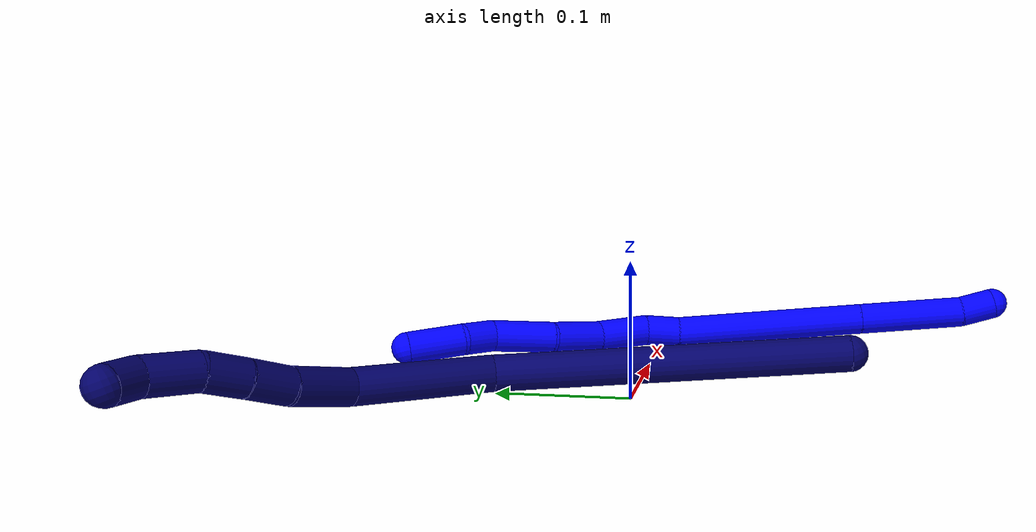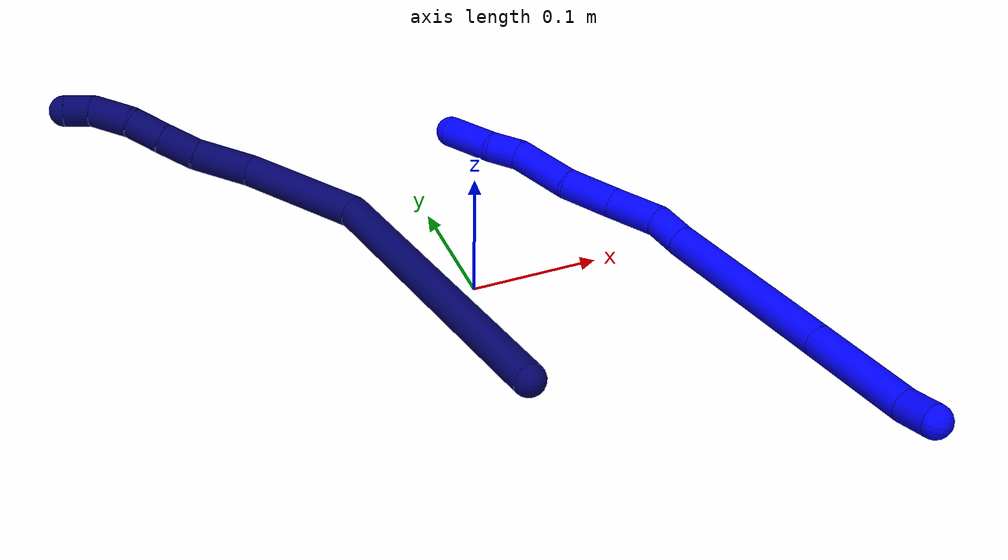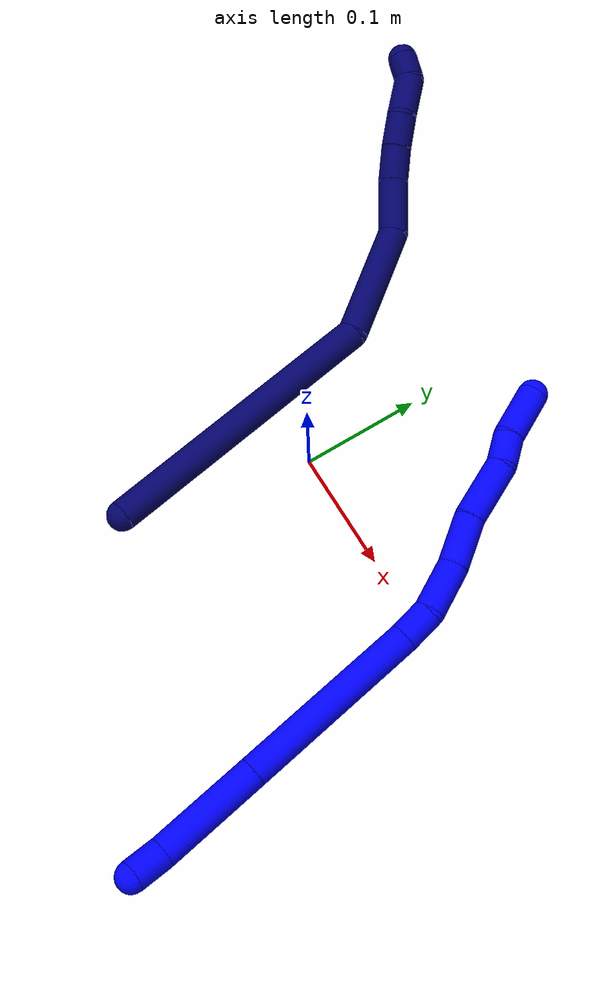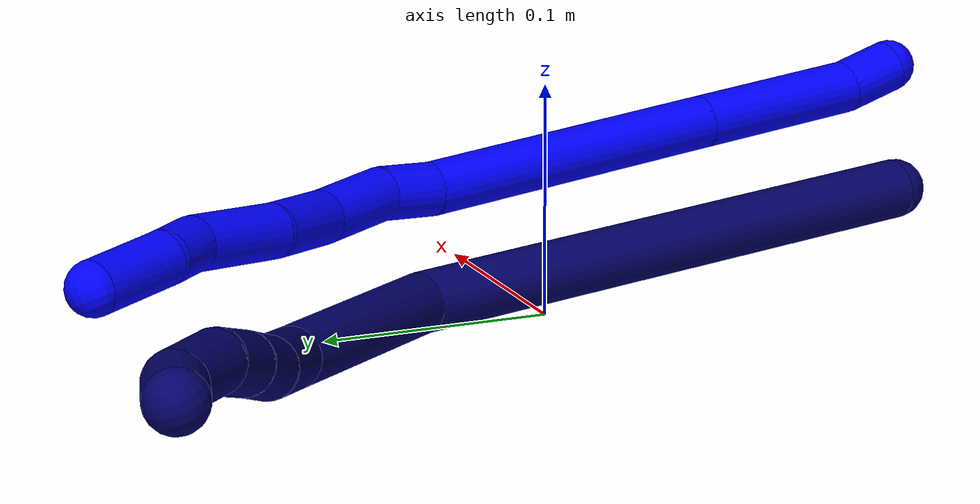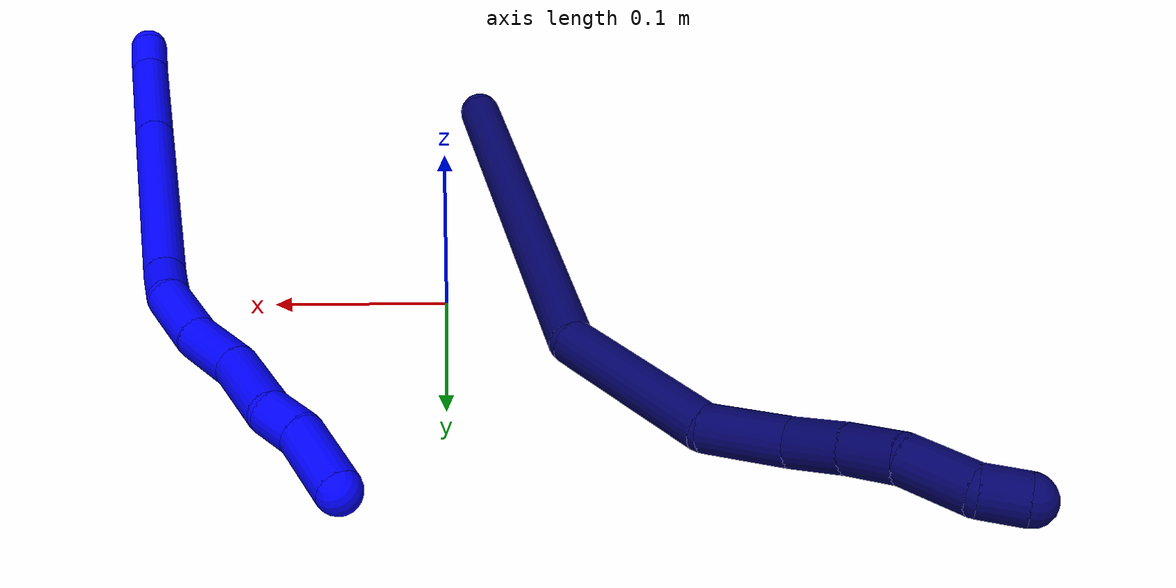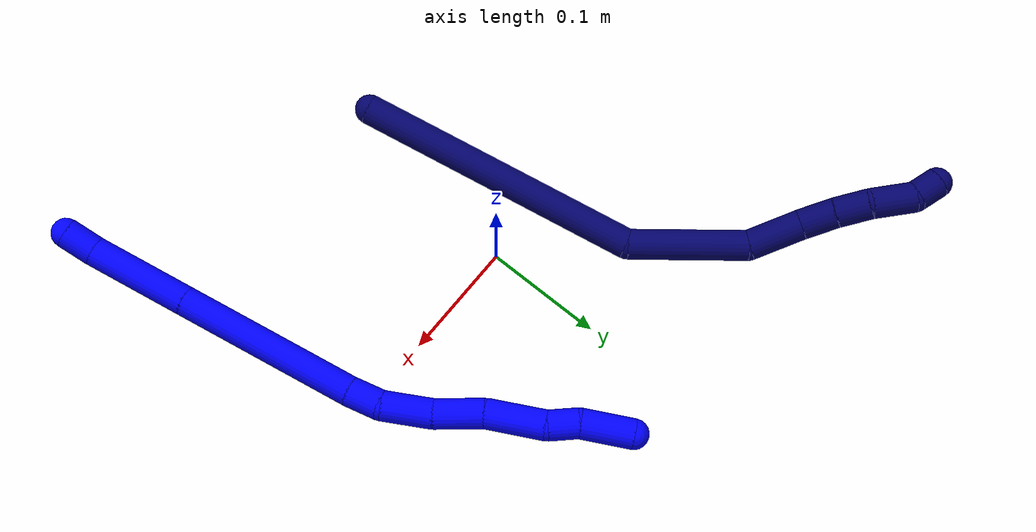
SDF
<sdf version="1.7">
 <world name="default">
  <model name="1">
   <static>0</static>
   <link name="1">
    <collision name="collision-cylinder-e_1_1_4">
     <pose>0.000587 0.013724 -0.000368 -1.59761 0.042724 -0.043885</pose>
     <geometry><cylinder><radius>0.0125</radius><length>0.027484</length></cylinder></geometry>
     <surface>
      <friction><ode><mu>1.16</mu><mu2>1.16</mu2><slip1>0</slip1><slip2>0</slip2></ode></friction>
      <contact><ode><kp>1e+06</kp><kd>1</kd><max_vel>0</max_vel><min_depth>0.001</min_depth></ode></contact>
     </surface>
    </collision>
    <visual name="visual-cylinder-e_1_1_4">
     <pose>0.000587 0.013724 -0.000368 -1.59761 0.042724 -0.043885</pose>
     <geometry><cylinder><radius>0.0125</radius><length>0.027484</length></cylinder></geometry>
     <material><ambient>0 0 1 1</ambient></material>
    </visual>
    <collision name="collision-cylinder-e_2_4_5">
     <pose>-0.00126 0.069983 0.005716 -1.42025 -0.056516 0.048593</pose>
     <geometry><cylinder><radius>0.0125</radius><length>0.086179</length></cylinder></geometry>
     <surface>
      <friction><ode><mu>1.16</mu><mu2>1.16</mu2><slip1>0</slip1><slip2>0</slip2></ode></friction>
      <contact><ode><kp>1e+06</kp><kd>1</kd><max_vel>0</max_vel><min_depth>0.001</min_depth></ode></contact>
     </surface>
    </collision>
    <visual name="visual-cylinder-e_2_4_5">
     <pose>-0.00126 0.069983 0.005716 -1.42025 -0.056516 0.048593</pose>
     <geometry><cylinder><radius>0.0125</radius><length>0.086179</length></cylinder></geometry>
     <material><ambient>0 0 1 1</ambient></material>
    </visual>
    <collision name="collision-cylinder-e_3_5_6">
     <pose>-0.008133 0.188635 0.02354 -1.4225 -0.057609 0.049645</pose>
     <geometry><cylinder><radius>0.0125</radius><length>0.154183</length></cylinder></geometry>
     <surface>
      <friction><ode><mu>1.16</mu><mu2>1.16</mu2><slip1>0</slip1><slip2>0</slip2></ode></friction>
      <contact><ode><kp>1e+06</kp><kd>1</kd><max_vel>0</max_vel><min_depth>0.001</min_depth></ode></contact>
     </surface>
    </collision>
    <visual name="visual-cylinder-e_3_5_6">
     <pose>-0.008133 0.188635 0.02354 -1.4225 -0.057609 0.049645</pose>
     <geometry><cylinder><radius>0.0125</radius><length>0.154183</length></cylinder></geometry>
     <material><ambient>0 0 1 1</ambient></material>
    </visual>
    <collision name="collision-cylinder-e_4_6_7">
     <pose>-0.014716 0.27819 0.038653 -1.2992 -0.152539 0.115959</pose>
     <geometry><cylinder><radius>0.0125</radius><length>0.028221</length></cylinder></geometry>
     <surface>
      <friction><ode><mu>1.16</mu><mu2>1.16</mu2><slip1>0</slip1><slip2>0</slip2></ode></friction>
      <contact><ode><kp>1e+06</kp><kd>1</kd><max_vel>0</max_vel><min_depth>0.001</min_depth></ode></contact>
     </surface>
    </collision>
    <visual name="visual-cylinder-e_4_6_7">
     <pose>-0.014716 0.27819 0.038653 -1.2992 -0.152539 0.115959</pose>
     <geometry><cylinder><radius>0.0125</radius><length>0.028221</length></cylinder></geometry>
     <material><ambient>0 0 1 1</ambient></material>
    </visual>
    <collision name="collision-cylinder-e_5_7_8">
     <pose>-0.024779 0.311254 0.043311 -1.52415 -0.383078 0.366011</pose>
     <geometry><cylinder><radius>0.0125</radius><length>0.042372</length></cylinder></geometry>
     <surface>
      <friction><ode><mu>1.16</mu><mu2>1.16</mu2><slip1>0</slip1><slip2>0</slip2></ode></friction>
      <contact><ode><kp>1e+06</kp><kd>1</kd><max_vel>0</max_vel><min_depth>0.001</min_depth></ode></contact>
     </surface>
    </collision>
    <visual name="visual-cylinder-e_5_7_8">
     <pose>-0.024779 0.311254 0.043311 -1.52415 -0.383078 0.366011</pose>
     <geometry><cylinder><radius>0.0125</radius><length>0.042372</length></cylinder></geometry>
     <material><ambient>0 0 1 1</ambient></material>
    </visual>
    <collision name="collision-cylinder-e_6_8_9">
     <pose>-0.043883 0.34843 0.046537 -1.4399 -0.563653 0.497319</pose>
     <geometry><cylinder><radius>0.0125</radius><length>0.041872</length></cylinder></geometry>
     <surface>
      <friction><ode><mu>1.16</mu><mu2>1.16</mu2><slip1>0</slip1><slip2>0</slip2></ode></friction>
      <contact><ode><kp>1e+06</kp><kd>1</kd><max_vel>0</max_vel><min_depth>0.001</min_depth></ode></contact>
     </surface>
    </collision>
    <visual name="visual-cylinder-e_6_8_9">
     <pose>-0.043883 0.34843 0.046537 -1.4399 -0.563653 0.497319</pose>
     <geometry><cylinder><radius>0.0125</radius><length>0.041872</length></cylinder></geometry>
     <material><ambient>0 0 1 1</ambient></material>
    </visual>
    <collision name="collision-cylinder-e_7_9_10">
     <pose>-0.064124 0.388932 0.053757 -1.3601 -0.368154 0.298905</pose>
     <geometry><cylinder><radius>0.0125</radius><length>0.050323</length></cylinder></geometry>
     <surface>
      <friction><ode><mu>1.16</mu><mu2>1.16</mu2><slip1>0</slip1><slip2>0</slip2></ode></friction>
      <contact><ode><kp>1e+06</kp><kd>1</kd><max_vel>0</max_vel><min_depth>0.001</min_depth></ode></contact>
     </surface>
    </collision>
    <visual name="visual-cylinder-e_7_9_10">
     <pose>-0.064124 0.388932 0.053757 -1.3601 -0.368154 0.298905</pose>
     <geometry><cylinder><radius>0.0125</radius><length>0.050323</length></cylinder></geometry>
     <material><ambient>0 0 1 1</ambient></material>
    </visual>
    <collision name="collision-cylinder-e_8_10_11">
     <pose>-0.080553 0.422339 0.058731 -1.56465 -0.614403 0.610865</pose>
     <geometry><cylinder><radius>0.0125</radius><length>0.02558</length></cylinder></geometry>
     <surface>
      <friction><ode><mu>1.16</mu><mu2>1.16</mu2><slip1>0</slip1><slip2>0</slip2></ode></friction>
      <contact><ode><kp>1e+06</kp><kd>1</kd><max_vel>0</max_vel><min_depth>0.001</min_depth></ode></contact>
     </surface>
    </collision>
    <visual name="visual-cylinder-e_8_10_11">
     <pose>-0.080553 0.422339 0.058731 -1.56465 -0.614403 0.610865</pose>
     <geometry><cylinder><radius>0.0125</radius><length>0.02558</length></cylinder></geometry>
     <material><ambient>0 0 1 1</ambient></material>
    </visual>
    <collision name="collision-cylinder-e_9_11_2">
     <pose>-0.095274 0.453407 0.059271 -1.54774 -0.342273 0.334618</pose>
     <geometry><cylinder><radius>0.0125</radius><length>0.043786</length></cylinder></geometry>
     <surface>
      <friction><ode><mu>1.16</mu><mu2>1.16</mu2><slip1>0</slip1><slip2>0</slip2></ode></friction>
      <contact><ode><kp>1e+06</kp><kd>1</kd><max_vel>0</max_vel><min_depth>0.001</min_depth></ode></contact>
     </surface>
    </collision>
    <visual name="visual-cylinder-e_9_11_2">
     <pose>-0.095274 0.453407 0.059271 -1.54774 -0.342273 0.334618</pose>
     <geometry><cylinder><radius>0.0125</radius><length>0.043786</length></cylinder></geometry>
     <material><ambient>0 0 1 1</ambient></material>
    </visual>
    <collision name="collision-sphere-2">
     <pose>-0.102622 0.474025 0.059746 0 -0 0</pose>
     <geometry><sphere><radius>0.0125</radius></sphere></geometry>
     <surface>
      <friction><ode><mu>1.16</mu><mu2>1.16</mu2><slip1>0</slip1><slip2>0</slip2></ode></friction>
      <contact><ode><kp>1e+06</kp><kd>1</kd><max_vel>0</max_vel><min_depth>0.001</min_depth></ode></contact>
     </surface>
    </collision>
    <visual name="visual-sphere-2">
     <pose>-0.102622 0.474025 0.059746 0 -0 0</pose>
     <geometry><sphere><radius>0.0125</radius></sphere></geometry>
     <material><ambient>0 0 1 1</ambient></material>
    </visual>
    <collision name="collision-sphere-11">
     <pose>-0.087926 0.43279 0.058795 0 -0 0</pose>
     <geometry><sphere><radius>0.0125</radius></sphere></geometry>
     <surface>
      <friction><ode><mu>1.16</mu><mu2>1.16</mu2><slip1>0</slip1><slip2>0</slip2></ode></friction>
      <contact><ode><kp>1e+06</kp><kd>1</kd><max_vel>0</max_vel><min_depth>0.001</min_depth></ode></contact>
     </surface>
    </collision>
    <visual name="visual-sphere-11">
     <pose>-0.087926 0.43279 0.058795 0 -0 0</pose>
     <geometry><sphere><radius>0.0125</radius></sphere></geometry>
     <material><ambient>0 0 1 1</ambient></material>
    </visual>
    <collision name="collision-sphere-10">
     <pose>-0.07318 0.411888 0.058667 0 -0 0</pose>
     <geometry><sphere><radius>0.0125</radius></sphere></geometry>
     <surface>
      <friction><ode><mu>1.16</mu><mu2>1.16</mu2><slip1>0</slip1><slip2>0</slip2></ode></friction>
      <contact><ode><kp>1e+06</kp><kd>1</kd><max_vel>0</max_vel><min_depth>0.001</min_depth></ode></contact>
     </surface>
    </collision>
    <visual name="visual-sphere-10">
     <pose>-0.07318 0.411888 0.058667 0 -0 0</pose>
     <geometry><sphere><radius>0.0125</radius></sphere></geometry>
     <material><ambient>0 0 1 1</ambient></material>
    </visual>
    <collision name="collision-sphere-9">
     <pose>-0.055069 0.365975 0.048847 0 -0 0</pose>
     <geometry><sphere><radius>0.0125</radius></sphere></geometry>
     <surface>
      <friction><ode><mu>1.16</mu><mu2>1.16</mu2><slip1>0</slip1><slip2>0</slip2></ode></friction>
      <contact><ode><kp>1e+06</kp><kd>1</kd><max_vel>0</max_vel><min_depth>0.001</min_depth></ode></contact>
     </surface>
    </collision>
    <visual name="visual-sphere-9">
     <pose>-0.055069 0.365975 0.048847 0 -0 0</pose>
     <geometry><sphere><radius>0.0125</radius></sphere></geometry>
     <material><ambient>0 0 1 1</ambient></material>
    </visual>
    <collision name="collision-sphere-4">
     <pose>0.001174 0.027449 -0.000736 0 -0 0</pose>
     <geometry><sphere><radius>0.0125</radius></sphere></geometry>
     <surface>
      <friction><ode><mu>1.16</mu><mu2>1.16</mu2><slip1>0</slip1><slip2>0</slip2></ode></friction>
      <contact><ode><kp>1e+06</kp><kd>1</kd><max_vel>0</max_vel><min_depth>0.001</min_depth></ode></contact>
     </surface>
    </collision>
    <visual name="visual-sphere-4">
     <pose>0.001174 0.027449 -0.000736 0 -0 0</pose>
     <geometry><sphere><radius>0.0125</radius></sphere></geometry>
     <material><ambient>0 0 1 1</ambient></material>
    </visual>
    <collision name="collision-sphere-1">
     <geometry><sphere><radius>0.0125</radius></sphere></geometry>
     <surface>
      <friction><ode><mu>1.16</mu><mu2>1.16</mu2><slip1>0</slip1><slip2>0</slip2></ode></friction>
      <contact><ode><kp>1e+06</kp><kd>1</kd><max_vel>0</max_vel><min_depth>0.001</min_depth></ode></contact>
     </surface>
    </collision>
    <visual name="visual-sphere-1">
     <geometry><sphere><radius>0.0125</radius></sphere></geometry>
     <material><ambient>0 0 1 1</ambient></material>
    </visual>
    <collision name="collision-sphere-8">
     <pose>-0.032697 0.330884 0.044227 0 -0 0</pose>
     <geometry><sphere><radius>0.0125</radius></sphere></geometry>
     <surface>
      <friction><ode><mu>1.16</mu><mu2>1.16</mu2><slip1>0</slip1><slip2>0</slip2></ode></friction>
      <contact><ode><kp>1e+06</kp><kd>1</kd><max_vel>0</max_vel><min_depth>0.001</min_depth></ode></contact>
     </surface>
    </collision>
    <visual name="visual-sphere-8">
     <pose>-0.032697 0.330884 0.044227 0 -0 0</pose>
     <geometry><sphere><radius>0.0125</radius></sphere></geometry>
     <material><ambient>0 0 1 1</ambient></material>
    </visual>
    <collision name="collision-sphere-5">
     <pose>-0.003694 0.112517 0.012168 0 -0 0</pose>
     <geometry><sphere><radius>0.0125</radius></sphere></geometry>
     <surface>
      <friction><ode><mu>1.16</mu><mu2>1.16</mu2><slip1>0</slip1><slip2>0</slip2></ode></friction>
      <contact><ode><kp>1e+06</kp><kd>1</kd><max_vel>0</max_vel><min_depth>0.001</min_depth></ode></contact>
     </surface>
    </collision>
    <visual name="visual-sphere-5">
     <pose>-0.003694 0.112517 0.012168 0 -0 0</pose>
     <geometry><sphere><radius>0.0125</radius></sphere></geometry>
     <material><ambient>0 0 1 1</ambient></material>
    </visual>
    <collision name="collision-sphere-6">
     <pose>-0.012571 0.264754 0.034912 0 -0 0</pose>
     <geometry><sphere><radius>0.0125</radius></sphere></geometry>
     <surface>
      <friction><ode><mu>1.16</mu><mu2>1.16</mu2><slip1>0</slip1><slip2>0</slip2></ode></friction>
      <contact><ode><kp>1e+06</kp><kd>1</kd><max_vel>0</max_vel><min_depth>0.001</min_depth></ode></contact>
     </surface>
    </collision>
    <visual name="visual-sphere-6">
     <pose>-0.012571 0.264754 0.034912 0 -0 0</pose>
     <geometry><sphere><radius>0.0125</radius></sphere></geometry>
     <material><ambient>0 0 1 1</ambient></material>
    </visual>
    <collision name="collision-sphere-7">
     <pose>-0.01686 0.291625 0.042395 0 -0 0</pose>
     <geometry><sphere><radius>0.0125</radius></sphere></geometry>
     <surface>
      <friction><ode><mu>1.16</mu><mu2>1.16</mu2><slip1>0</slip1><slip2>0</slip2></ode></friction>
      <contact><ode><kp>1e+06</kp><kd>1</kd><max_vel>0</max_vel><min_depth>0.001</min_depth></ode></contact>
     </surface>
    </collision>
    <visual name="visual-sphere-7">
     <pose>-0.01686 0.291625 0.042395 0 -0 0</pose>
     <geometry><sphere><radius>0.0125</radius></sphere></geometry>
     <material><ambient>0 0 1 1</ambient></material>
    </visual>
    <inertial>
     <pose>-0.028216 0.2427 0.031579 0 -0 0</pose>
     <mass>0.5</mass>
     <inertia>
      <ixx>0.00043</ixx>
      <ixy>0</ixy>
      <ixz>0</ixz>
      <iyy>0.000135</iyy>
      <iyz>0</iyz>
      <izz>-0.000363</izz>
     </inertia>
    </inertial>
   </link>
   <pose>0.215495 -0.277612 0.033463 -0.235821 0.346695 0.105577</pose>
  </model>
  <model name="7">
   <static>0</static>
   <link name="7">
    <collision name="collision-cylinder-e_1_1_4">
     <pose>0.003216 0.115475 0.035676 -1.27115 0.026605 -0.019627</pose>
     <geometry><cylinder><radius>0.0125</radius><length>0.241806</length></cylinder></geometry>
     <surface>
      <friction><ode><mu>1.16</mu><mu2>1.16</mu2><slip1>0</slip1><slip2>0</slip2></ode></friction>
      <contact><ode><kp>1e+06</kp><kd>1</kd><max_vel>0</max_vel><min_depth>0.001</min_depth></ode></contact>
     </surface>
    </collision>
    <visual name="visual-cylinder-e_1_1_4">
     <pose>0.003216 0.115475 0.035676 -1.27115 0.026605 -0.019627</pose>
     <geometry><cylinder><radius>0.0125</radius><length>0.241806</length></cylinder></geometry>
     <material><ambient>0.003922 0 0.403922 1</ambient></material>
    </visual>
    <collision name="collision-cylinder-e_2_4_5">
     <pose>-0.014926 0.27238 0.086414 -1.22212 -0.451181 0.318798</pose>
     <geometry><cylinder><radius>0.0125</radius><length>0.09797</length></cylinder></geometry>
     <surface>
      <friction><ode><mu>1.16</mu><mu2>1.16</mu2><slip1>0</slip1><slip2>0</slip2></ode></friction>
      <contact><ode><kp>1e+06</kp><kd>1</kd><max_vel>0</max_vel><min_depth>0.001</min_depth></ode></contact>
     </surface>
    </collision>
    <visual name="visual-cylinder-e_2_4_5">
     <pose>-0.014926 0.27238 0.086414 -1.22212 -0.451181 0.318798</pose>
     <geometry><cylinder><radius>0.0125</radius><length>0.09797</length></cylinder></geometry>
     <material><ambient>0.003922 0 0.403922 1</ambient></material>
    </visual>
    <collision name="collision-cylinder-e_3_5_6">
     <pose>-0.052626 0.32705 0.110147 -0.990872 -0.801366 0.450064</pose>
     <geometry><cylinder><radius>0.0125</radius><length>0.045498</length></cylinder></geometry>
     <surface>
      <friction><ode><mu>1.16</mu><mu2>1.16</mu2><slip1>0</slip1><slip2>0</slip2></ode></friction>
      <contact><ode><kp>1e+06</kp><kd>1</kd><max_vel>0</max_vel><min_depth>0.001</min_depth></ode></contact>
     </surface>
    </collision>
    <visual name="visual-cylinder-e_3_5_6">
     <pose>-0.052626 0.32705 0.110147 -0.990872 -0.801366 0.450064</pose>
     <geometry><cylinder><radius>0.0125</radius><length>0.045498</length></cylinder></geometry>
     <material><ambient>0.003922 0 0.403922 1</ambient></material>
    </visual>
    <collision name="collision-cylinder-e_4_6_7">
     <pose>-0.078284 0.348673 0.126385 -0.836657 -0.689874 0.316793</pose>
     <geometry><cylinder><radius>0.0125</radius><length>0.029278</length></cylinder></geometry>
     <surface>
      <friction><ode><mu>1.16</mu><mu2>1.16</mu2><slip1>0</slip1><slip2>0</slip2></ode></friction>
      <contact><ode><kp>1e+06</kp><kd>1</kd><max_vel>0</max_vel><min_depth>0.001</min_depth></ode></contact>
     </surface>
    </collision>
    <visual name="visual-cylinder-e_4_6_7">
     <pose>-0.078284 0.348673 0.126385 -0.836657 -0.689874 0.316793</pose>
     <geometry><cylinder><radius>0.0125</radius><length>0.029278</length></cylinder></geometry>
     <material><ambient>0.003922 0 0.403922 1</ambient></material>
    </visual>
    <collision name="collision-cylinder-e_5_7_8">
     <pose>-0.095781 0.365844 0.141135 -0.88535 -0.62444 0.303671</pose>
     <geometry><cylinder><radius>0.0125</radius><length>0.027985</length></cylinder></geometry>
     <surface>
      <friction><ode><mu>1.16</mu><mu2>1.16</mu2><slip1>0</slip1><slip2>0</slip2></ode></friction>
      <contact><ode><kp>1e+06</kp><kd>1</kd><max_vel>0</max_vel><min_depth>0.001</min_depth></ode></contact>
     </surface>
    </collision>
    <visual name="visual-cylinder-e_5_7_8">
     <pose>-0.095781 0.365844 0.141135 -0.88535 -0.62444 0.303671</pose>
     <geometry><cylinder><radius>0.0125</radius><length>0.027985</length></cylinder></geometry>
     <material><ambient>0.003922 0 0.403922 1</ambient></material>
    </visual>
    <collision name="collision-cylinder-e_6_8_9">
     <pose>-0.114148 0.388093 0.153618 -1.19592 -0.613509 0.424994</pose>
     <geometry><cylinder><radius>0.0125</radius><length>0.035385</length></cylinder></geometry>
     <surface>
      <friction><ode><mu>1.16</mu><mu2>1.16</mu2><slip1>0</slip1><slip2>0</slip2></ode></friction>
      <contact><ode><kp>1e+06</kp><kd>1</kd><max_vel>0</max_vel><min_depth>0.001</min_depth></ode></contact>
     </surface>
    </collision>
    <visual name="visual-cylinder-e_6_8_9">
     <pose>-0.114148 0.388093 0.153618 -1.19592 -0.613509 0.424994</pose>
     <geometry><cylinder><radius>0.0125</radius><length>0.035385</length></cylinder></geometry>
     <material><ambient>0.003922 0 0.403922 1</ambient></material>
    </visual>
    <collision name="collision-cylinder-e_7_9_2">
     <pose>-0.133897 0.406893 0.160293 -1.31819 -1.04772 0.841574</pose>
     <geometry><cylinder><radius>0.0125</radius><length>0.022078</length></cylinder></geometry>
     <surface>
      <friction><ode><mu>1.16</mu><mu2>1.16</mu2><slip1>0</slip1><slip2>0</slip2></ode></friction>
      <contact><ode><kp>1e+06</kp><kd>1</kd><max_vel>0</max_vel><min_depth>0.001</min_depth></ode></contact>
     </surface>
    </collision>
    <visual name="visual-cylinder-e_7_9_2">
     <pose>-0.133897 0.406893 0.160293 -1.31819 -1.04772 0.841574</pose>
     <geometry><cylinder><radius>0.0125</radius><length>0.022078</length></cylinder></geometry>
     <material><ambient>0.003922 0 0.403922 1</ambient></material>
    </visual>
    <collision name="collision-sphere-2">
     <pose>-0.14346 0.412233 0.161671 0 -0 0</pose>
     <geometry><sphere><radius>0.0125</radius></sphere></geometry>
     <surface>
      <friction><ode><mu>1.16</mu><mu2>1.16</mu2><slip1>0</slip1><slip2>0</slip2></ode></friction>
      <contact><ode><kp>1e+06</kp><kd>1</kd><max_vel>0</max_vel><min_depth>0.001</min_depth></ode></contact>
     </surface>
    </collision>
    <visual name="visual-sphere-2">
     <pose>-0.14346 0.412233 0.161671 0 -0 0</pose>
     <geometry><sphere><radius>0.0125</radius></sphere></geometry>
     <material><ambient>0.003922 0 0.403922 1</ambient></material>
    </visual>
    <collision name="collision-sphere-9">
     <pose>-0.124334 0.401554 0.158915 0 -0 0</pose>
     <geometry><sphere><radius>0.0125</radius></sphere></geometry>
     <surface>
      <friction><ode><mu>1.16</mu><mu2>1.16</mu2><slip1>0</slip1><slip2>0</slip2></ode></friction>
      <contact><ode><kp>1e+06</kp><kd>1</kd><max_vel>0</max_vel><min_depth>0.001</min_depth></ode></contact>
     </surface>
    </collision>
    <visual name="visual-sphere-9">
     <pose>-0.124334 0.401554 0.158915 0 -0 0</pose>
     <geometry><sphere><radius>0.0125</radius></sphere></geometry>
     <material><ambient>0.003922 0 0.403922 1</ambient></material>
    </visual>
    <collision name="collision-sphere-4">
     <pose>0.006433 0.230949 0.071352 0 -0 0</pose>
     <geometry><sphere><radius>0.0125</radius></sphere></geometry>
     <surface>
      <friction><ode><mu>1.16</mu><mu2>1.16</mu2><slip1>0</slip1><slip2>0</slip2></ode></friction>
      <contact><ode><kp>1e+06</kp><kd>1</kd><max_vel>0</max_vel><min_depth>0.001</min_depth></ode></contact>
     </surface>
    </collision>
    <visual name="visual-sphere-4">
     <pose>0.006433 0.230949 0.071352 0 -0 0</pose>
     <geometry><sphere><radius>0.0125</radius></sphere></geometry>
     <material><ambient>0.003922 0 0.403922 1</ambient></material>
    </visual>
    <collision name="collision-sphere-1">
     <geometry><sphere><radius>0.0125</radius></sphere></geometry>
     <surface>
      <friction><ode><mu>1.16</mu><mu2>1.16</mu2><slip1>0</slip1><slip2>0</slip2></ode></friction>
      <contact><ode><kp>1e+06</kp><kd>1</kd><max_vel>0</max_vel><min_depth>0.001</min_depth></ode></contact>
     </surface>
    </collision>
    <visual name="visual-sphere-1">
     <geometry><sphere><radius>0.0125</radius></sphere></geometry>
     <material><ambient>0.003922 0 0.403922 1</ambient></material>
    </visual>
    <collision name="collision-sphere-8">
     <pose>-0.103962 0.374631 0.148321 0 -0 0</pose>
     <geometry><sphere><radius>0.0125</radius></sphere></geometry>
     <surface>
      <friction><ode><mu>1.16</mu><mu2>1.16</mu2><slip1>0</slip1><slip2>0</slip2></ode></friction>
      <contact><ode><kp>1e+06</kp><kd>1</kd><max_vel>0</max_vel><min_depth>0.001</min_depth></ode></contact>
     </surface>
    </collision>
    <visual name="visual-sphere-8">
     <pose>-0.103962 0.374631 0.148321 0 -0 0</pose>
     <geometry><sphere><radius>0.0125</radius></sphere></geometry>
     <material><ambient>0.003922 0 0.403922 1</ambient></material>
    </visual>
    <collision name="collision-sphere-5">
     <pose>-0.036285 0.313811 0.101475 0 -0 0</pose>
     <geometry><sphere><radius>0.0125</radius></sphere></geometry>
     <surface>
      <friction><ode><mu>1.16</mu><mu2>1.16</mu2><slip1>0</slip1><slip2>0</slip2></ode></friction>
      <contact><ode><kp>1e+06</kp><kd>1</kd><max_vel>0</max_vel><min_depth>0.001</min_depth></ode></contact>
     </surface>
    </collision>
    <visual name="visual-sphere-5">
     <pose>-0.036285 0.313811 0.101475 0 -0 0</pose>
     <geometry><sphere><radius>0.0125</radius></sphere></geometry>
     <material><ambient>0.003922 0 0.403922 1</ambient></material>
    </visual>
    <collision name="collision-sphere-6">
     <pose>-0.068967 0.34029 0.11882 0 -0 0</pose>
     <geometry><sphere><radius>0.0125</radius></sphere></geometry>
     <surface>
      <friction><ode><mu>1.16</mu><mu2>1.16</mu2><slip1>0</slip1><slip2>0</slip2></ode></friction>
      <contact><ode><kp>1e+06</kp><kd>1</kd><max_vel>0</max_vel><min_depth>0.001</min_depth></ode></contact>
     </surface>
    </collision>
    <visual name="visual-sphere-6">
     <pose>-0.068967 0.34029 0.11882 0 -0 0</pose>
     <geometry><sphere><radius>0.0125</radius></sphere></geometry>
     <material><ambient>0.003922 0 0.403922 1</ambient></material>
    </visual>
    <collision name="collision-sphere-7">
     <pose>-0.087601 0.357056 0.133949 0 -0 0</pose>
     <geometry><sphere><radius>0.0125</radius></sphere></geometry>
     <surface>
      <friction><ode><mu>1.16</mu><mu2>1.16</mu2><slip1>0</slip1><slip2>0</slip2></ode></friction>
      <contact><ode><kp>1e+06</kp><kd>1</kd><max_vel>0</max_vel><min_depth>0.001</min_depth></ode></contact>
     </surface>
    </collision>
    <visual name="visual-sphere-7">
     <pose>-0.087601 0.357056 0.133949 0 -0 0</pose>
     <geometry><sphere><radius>0.0125</radius></sphere></geometry>
     <material><ambient>0.003922 0 0.403922 1</ambient></material>
    </visual>
    <inertial>
     <pose>-0.030093 0.2253 0.077458 0 -0 0</pose>
     <mass>0.5</mass>
     <inertia>
      <ixx>0.001268</ixx>
      <ixy>0</ixy>
      <ixz>0</ixz>
      <iyy>0.000443</iyy>
      <iyz>0</iyz>
      <izz>-0.001186</izz>
     </inertia>
    </inertial>
   </link>
   <pose>-0.022175 -0.154123 0.044255 -0.342276 0.078847 0.208888</pose>
  </model>
 </world>
</sdf>
